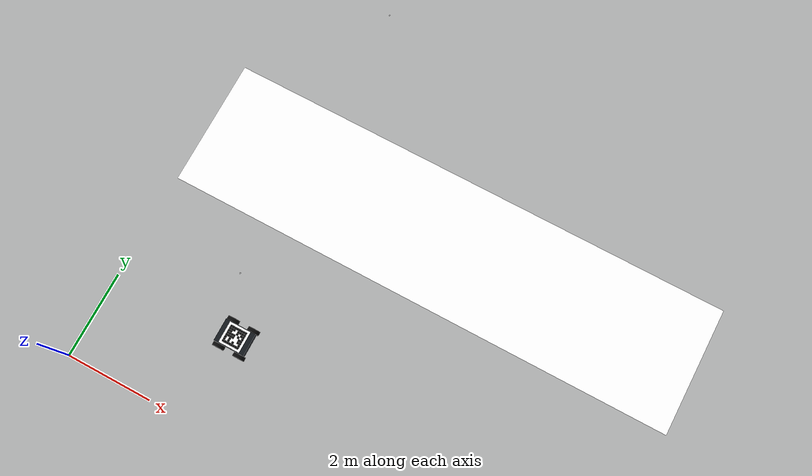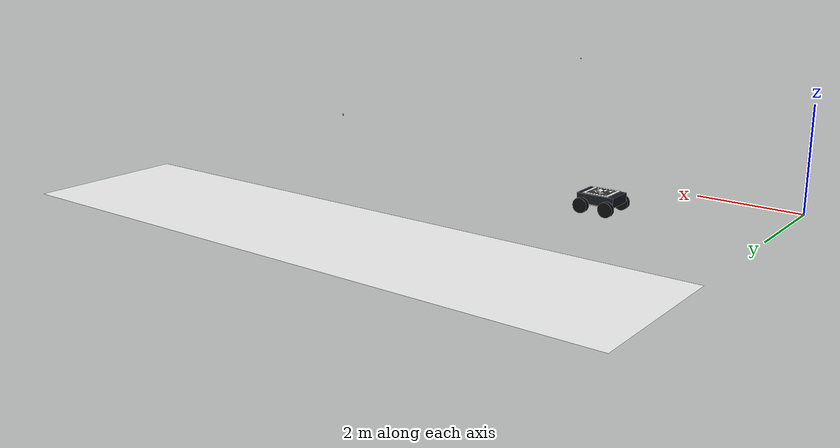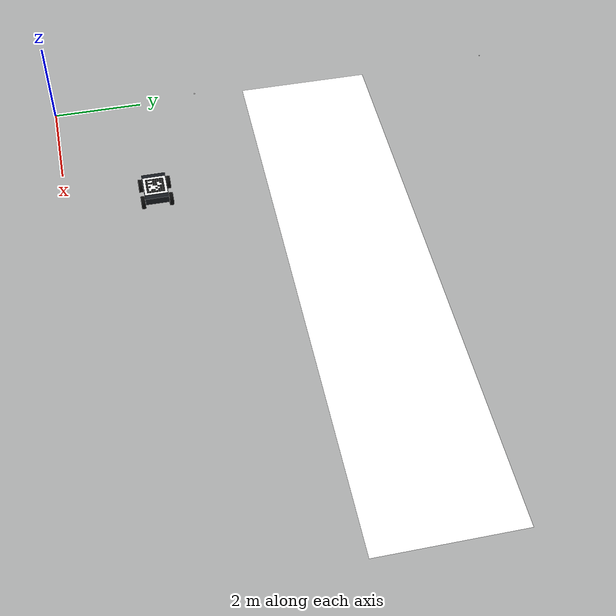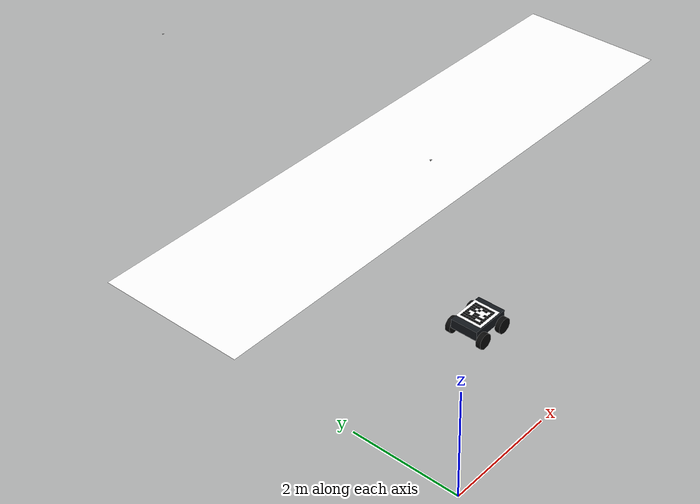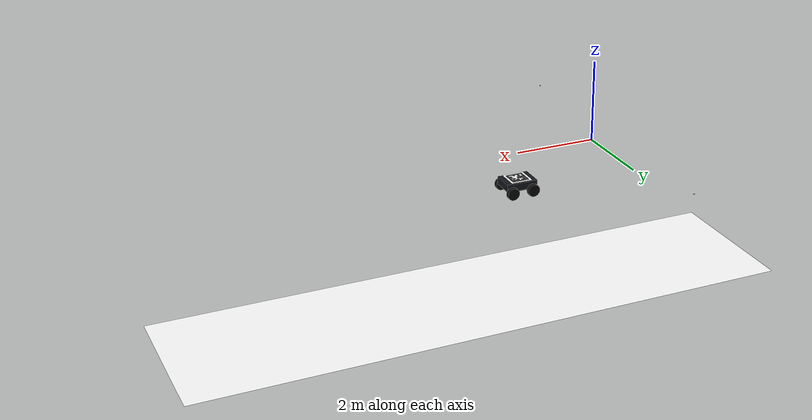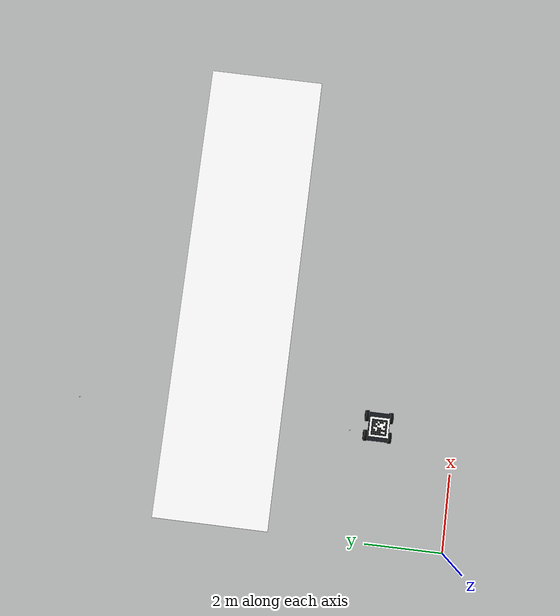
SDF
<sdf version="1.9">
 <world name="mocap_arena">
  <model name="camera_2">
   <static>true</static>
   <pose>3 9 2.90 0 1.5707963267948966 0</pose>
   <link name="camera_link">
    <visual name="rpi_camera_visual">
     <pose>0 0 0 0 0 -1.5707963267948966</pose>
     <geometry>
      <mesh><uri>file:///home/popka/Drone/mocap-rover/models/rpi_camera/meshes/rpi_camera.obj</uri></mesh>
     </geometry>
    </visual>
    <sensor name="camera_2" type="wideanglecamera">
     <pose>0.02 0 0 0 0 0</pose>
     <always_on>true</always_on>
     <update_rate>15</update_rate>
     <topic>/cameras/camera_2/image</topic>
     <visualize>true</visualize>
     <camera>
      <horizontal_fov>2.232714</horizontal_fov>
      <camera_info_topic>/cameras/camera_2/camera_info</camera_info_topic>
      <image><width>1640</width><height>1232</height><format>R8G8B8</format></image>
      <clip><near>0.03</near><far>20</far></clip>
      <lens>
       <type>equidistant</type>
       <scale_to_hfov>true</scale_to_hfov>
       <cutoff_angle>1.4163</cutoff_angle>
       <env_texture_size>2048</env_texture_size>
      </lens>
     </camera>
    </sensor>
   </link>
  </model>
  <model name="camera_3">
   <static>true</static>
   <pose>3 3 2.90 0 1.5707963267948966 0</pose>
   <link name="camera_link">
    <visual name="rpi_camera_visual">
     <pose>0 0 0 0 0 -1.5707963267948966</pose>
     <geometry>
      <mesh><uri>file:///home/popka/Drone/mocap-rover/models/rpi_camera/meshes/rpi_camera.obj</uri></mesh>
     </geometry>
    </visual>
    <sensor name="camera_3" type="wideanglecamera">
     <pose>0.02 0 0 0 0 0</pose>
     <always_on>true</always_on>
     <update_rate>15</update_rate>
     <topic>/cameras/camera_3/image</topic>
     <visualize>true</visualize>
     <camera>
      <horizontal_fov>2.232714</horizontal_fov>
      <camera_info_topic>/cameras/camera_3/camera_info</camera_info_topic>
      <image><width>1640</width><height>1232</height><format>R8G8B8</format></image>
      <clip><near>0.03</near><far>20</far></clip>
      <lens>
       <type>equidistant</type>
       <scale_to_hfov>true</scale_to_hfov>
       <cutoff_angle>1.4163</cutoff_angle>
       <env_texture_size>2048</env_texture_size>
      </lens>
     </camera>
    </sensor>
   </link>
  </model>
  <model name="tag_rover">
   <pose>3 2 0.14 0 0 0</pose>
   <link name="base_link">
    <inertial>
     <mass>8</mass>
     <inertia><ixx>0.22</ixx><iyy>0.22</iyy><izz>0.22</izz><ixy>0</ixy><ixz>0</ixz><iyz>0</iyz></inertia>
    </inertial>
    <collision name="body_collision">
     <pose>0 0 0.12 0 0 0</pose>
     <geometry><box><size>0.72 0.52 0.18</size></box></geometry>
    </collision>
    <visual name="body_visual">
     <pose>0 0 0.12 0 0 0</pose>
     <geometry><box><size>0.72 0.52 0.18</size></box></geometry>
     <material>
      <ambient>0.075 0.09 0.11 1</ambient>
      <diffuse>0.075 0.09 0.11 1</diffuse>
      <pbr><metal><metalness>0.2</metalness><roughness>0.7</roughness></metal></pbr>
     </material>
    </visual>
    <collision name="tag_board_collision">
     <pose>0 0 0.22 0 0 0</pose>
     <geometry><box><size>0.5 0.5 0.01</size></box></geometry>
    </collision>
    <visual name="tag_board_visual">
     <pose>0 0 0.22 0 0 0</pose>
     <geometry><box><size>0.5 0.5 0.01</size></box></geometry>
     <material>
      <ambient>1 1 1 1</ambient>
      <diffuse>1 1 1 1</diffuse>
      <pbr><metal><metalness>0.0</metalness><roughness>0.75</roughness></metal></pbr>
     </material>
    </visual>
    <collision name="bottom_tag_board_collision">
     <pose>0 0 0.02 0 0 0</pose>
     <geometry><box><size>0.5 0.5 0.01</size></box></geometry>
    </collision>
    <visual name="bottom_tag_board_visual">
     <pose>0 0 0.02 0 0 0</pose>
     <geometry><box><size>0.5 0.5 0.01</size></box></geometry>
     <material>
      <ambient>1 1 1 1</ambient>
      <diffuse>1 1 1 1</diffuse>
      <pbr><metal><metalness>0.0</metalness><roughness>0.75</roughness></metal></pbr>
     </material>
    </visual>
    <visual name="tag_0_1_1_visual">
     <pose>-0.17500000000000002 0.17500000000000002 0.2252 0 0 0</pose>
     <geometry><box><size>0.05 0.05 0.0004</size></box></geometry>
     <material>
      <ambient>0 0 0 1</ambient>
      <diffuse>0 0 0 1</diffuse>
      <pbr><metal><metalness>0.0</metalness><roughness>0.75</roughness></metal></pbr>
     </material>
    </visual>
    <visual name="tag_0_1_2_visual">
     <pose>-0.125 0.17500000000000002 0.2252 0 0 0</pose>
     <geometry><box><size>0.05 0.05 0.0004</size></box></geometry>
     <material>
      <ambient>0 0 0 1</ambient>
      <diffuse>0 0 0 1</diffuse>
      <pbr><metal><metalness>0.0</metalness><roughness>0.75</roughness></metal></pbr>
     </material>
    </visual>
    <visual name="tag_0_1_3_visual">
     <pose>-0.07500000000000001 0.17500000000000002 0.2252 0 0 0</pose>
     <geometry><box><size>0.05 0.05 0.0004</size></box></geometry>
     <material>
      <ambient>0 0 0 1</ambient>
      <diffuse>0 0 0 1</diffuse>
      <pbr><metal><metalness>0.0</metalness><roughness>0.75</roughness></metal></pbr>
     </material>
    </visual>
    <visual name="tag_0_1_4_visual">
     <pose>-0.025 0.17500000000000002 0.2252 0 0 0</pose>
     <geometry><box><size>0.05 0.05 0.0004</size></box></geometry>
     <material>
      <ambient>0 0 0 1</ambient>
      <diffuse>0 0 0 1</diffuse>
      <pbr><metal><metalness>0.0</metalness><roughness>0.75</roughness></metal></pbr>
     </material>
    </visual>
    <visual name="tag_0_1_5_visual">
     <pose>0.025 0.17500000000000002 0.2252 0 0 0</pose>
     <geometry><box><size>0.05 0.05 0.0004</size></box></geometry>
     <material>
      <ambient>0 0 0 1</ambient>
      <diffuse>0 0 0 1</diffuse>
      <pbr><metal><metalness>0.0</metalness><roughness>0.75</roughness></metal></pbr>
     </material>
    </visual>
    <visual name="tag_0_1_6_visual">
     <pose>0.07500000000000001 0.17500000000000002 0.2252 0 0 0</pose>
     <geometry><box><size>0.05 0.05 0.0004</size></box></geometry>
     <material>
      <ambient>0 0 0 1</ambient>
      <diffuse>0 0 0 1</diffuse>
      <pbr><metal><metalness>0.0</metalness><roughness>0.75</roughness></metal></pbr>
     </material>
    </visual>
    <visual name="tag_0_1_7_visual">
     <pose>0.125 0.17500000000000002 0.2252 0 0 0</pose>
     <geometry><box><size>0.05 0.05 0.0004</size></box></geometry>
     <material>
      <ambient>0 0 0 1</ambient>
      <diffuse>0 0 0 1</diffuse>
      <pbr><metal><metalness>0.0</metalness><roughness>0.75</roughness></metal></pbr>
     </material>
    </visual>
    <visual name="tag_0_1_8_visual">
     <pose>0.17500000000000002 0.17500000000000002 0.2252 0 0 0</pose>
     <geometry><box><size>0.05 0.05 0.0004</size></box></geometry>
     <material>
      <ambient>0 0 0 1</ambient>
      <diffuse>0 0 0 1</diffuse>
      <pbr><metal><metalness>0.0</metalness><roughness>0.75</roughness></metal></pbr>
     </material>
    </visual>
    <visual name="tag_0_2_1_visual">
     <pose>-0.17500000000000002 0.125 0.2252 0 0 0</pose>
     <geometry><box><size>0.05 0.05 0.0004</size></box></geometry>
     <material>
      <ambient>0 0 0 1</ambient>
      <diffuse>0 0 0 1</diffuse>
      <pbr><metal><metalness>0.0</metalness><roughness>0.75</roughness></metal></pbr>
     </material>
    </visual>
    <visual name="tag_0_2_2_visual">
     <pose>-0.125 0.125 0.2252 0 0 0</pose>
     <geometry><box><size>0.05 0.05 0.0004</size></box></geometry>
     <material>
      <ambient>0 0 0 1</ambient>
      <diffuse>0 0 0 1</diffuse>
      <pbr><metal><metalness>0.0</metalness><roughness>0.75</roughness></metal></pbr>
     </material>
    </visual>
    <visual name="tag_0_2_3_visual">
     <pose>-0.07500000000000001 0.125 0.2252 0 0 0</pose>
     <geometry><box><size>0.05 0.05 0.0004</size></box></geometry>
     <material>
      <ambient>0 0 0 1</ambient>
      <diffuse>0 0 0 1</diffuse>
      <pbr><metal><metalness>0.0</metalness><roughness>0.75</roughness></metal></pbr>
     </material>
    </visual>
    <visual name="tag_0_2_5_visual">
     <pose>0.025 0.125 0.2252 0 0 0</pose>
     <geometry><box><size>0.05 0.05 0.0004</size></box></geometry>
     <material>
      <ambient>0 0 0 1</ambient>
      <diffuse>0 0 0 1</diffuse>
      <pbr><metal><metalness>0.0</metalness><roughness>0.75</roughness></metal></pbr>
     </material>
    </visual>
    <visual name="tag_0_2_6_visual">
     <pose>0.07500000000000001 0.125 0.2252 0 0 0</pose>
     <geometry><box><size>0.05 0.05 0.0004</size></box></geometry>
     <material>
      <ambient>0 0 0 1</ambient>
      <diffuse>0 0 0 1</diffuse>
      <pbr><metal><metalness>0.0</metalness><roughness>0.75</roughness></metal></pbr>
     </material>
    </visual>
    <visual name="tag_0_2_7_visual">
     <pose>0.125 0.125 0.2252 0 0 0</pose>
     <geometry><box><size>0.05 0.05 0.0004</size></box></geometry>
     <material>
      <ambient>0 0 0 1</ambient>
      <diffuse>0 0 0 1</diffuse>
      <pbr><metal><metalness>0.0</metalness><roughness>0.75</roughness></metal></pbr>
     </material>
    </visual>
    <visual name="tag_0_2_8_visual">
     <pose>0.17500000000000002 0.125 0.2252 0 0 0</pose>
     <geometry><box><size>0.05 0.05 0.0004</size></box></geometry>
     <material>
      <ambient>0 0 0 1</ambient>
      <diffuse>0 0 0 1</diffuse>
      <pbr><metal><metalness>0.0</metalness><roughness>0.75</roughness></metal></pbr>
     </material>
    </visual>
    <visual name="tag_0_3_1_visual">
     <pose>-0.17500000000000002 0.07500000000000001 0.2252 0 0 0</pose>
     <geometry><box><size>0.05 0.05 0.0004</size></box></geometry>
     <material>
      <ambient>0 0 0 1</ambient>
      <diffuse>0 0 0 1</diffuse>
      <pbr><metal><metalness>0.0</metalness><roughness>0.75</roughness></metal></pbr>
     </material>
    </visual>
    <visual name="tag_0_3_2_visual">
     <pose>-0.125 0.07500000000000001 0.2252 0 0 0</pose>
     <geometry><box><size>0.05 0.05 0.0004</size></box></geometry>
     <material>
      <ambient>0 0 0 1</ambient>
      <diffuse>0 0 0 1</diffuse>
      <pbr><metal><metalness>0.0</metalness><roughness>0.75</roughness></metal></pbr>
     </material>
    </visual>
    <visual name="tag_0_3_5_visual">
     <pose>0.025 0.07500000000000001 0.2252 0 0 0</pose>
     <geometry><box><size>0.05 0.05 0.0004</size></box></geometry>
     <material>
      <ambient>0 0 0 1</ambient>
      <diffuse>0 0 0 1</diffuse>
      <pbr><metal><metalness>0.0</metalness><roughness>0.75</roughness></metal></pbr>
     </material>
    </visual>
    <visual name="tag_0_3_7_visual">
     <pose>0.125 0.07500000000000001 0.2252 0 0 0</pose>
     <geometry><box><size>0.05 0.05 0.0004</size></box></geometry>
     <material>
      <ambient>0 0 0 1</ambient>
      <diffuse>0 0 0 1</diffuse>
      <pbr><metal><metalness>0.0</metalness><roughness>0.75</roughness></metal></pbr>
     </material>
    </visual>
    <visual name="tag_0_3_8_visual">
     <pose>0.17500000000000002 0.07500000000000001 0.2252 0 0 0</pose>
     <geometry><box><size>0.05 0.05 0.0004</size></box></geometry>
     <material>
      <ambient>0 0 0 1</ambient>
      <diffuse>0 0 0 1</diffuse>
      <pbr><metal><metalness>0.0</metalness><roughness>0.75</roughness></metal></pbr>
     </material>
    </visual>
    <visual name="tag_0_4_1_visual">
     <pose>-0.17500000000000002 0.025 0.2252 0 0 0</pose>
     <geometry><box><size>0.05 0.05 0.0004</size></box></geometry>
     <material>
      <ambient>0 0 0 1</ambient>
      <diffuse>0 0 0 1</diffuse>
      <pbr><metal><metalness>0.0</metalness><roughness>0.75</roughness></metal></pbr>
     </material>
    </visual>
    <visual name="tag_0_4_2_visual">
     <pose>-0.125 0.025 0.2252 0 0 0</pose>
     <geometry><box><size>0.05 0.05 0.0004</size></box></geometry>
     <material>
      <ambient>0 0 0 1</ambient>
      <diffuse>0 0 0 1</diffuse>
      <pbr><metal><metalness>0.0</metalness><roughness>0.75</roughness></metal></pbr>
     </material>
    </visual>
    <visual name="tag_0_4_3_visual">
     <pose>-0.07500000000000001 0.025 0.2252 0 0 0</pose>
     <geometry><box><size>0.05 0.05 0.0004</size></box></geometry>
     <material>
      <ambient>0 0 0 1</ambient>
      <diffuse>0 0 0 1</diffuse>
      <pbr><metal><metalness>0.0</metalness><roughness>0.75</roughness></metal></pbr>
     </material>
    </visual>
    <visual name="tag_0_4_4_visual">
     <pose>-0.025 0.025 0.2252 0 0 0</pose>
     <geometry><box><size>0.05 0.05 0.0004</size></box></geometry>
     <material>
      <ambient>0 0 0 1</ambient>
      <diffuse>0 0 0 1</diffuse>
      <pbr><metal><metalness>0.0</metalness><roughness>0.75</roughness></metal></pbr>
     </material>
    </visual>
    <visual name="tag_0_4_6_visual">
     <pose>0.07500000000000001 0.025 0.2252 0 0 0</pose>
     <geometry><box><size>0.05 0.05 0.0004</size></box></geometry>
     <material>
      <ambient>0 0 0 1</ambient>
      <diffuse>0 0 0 1</diffuse>
      <pbr><metal><metalness>0.0</metalness><roughness>0.75</roughness></metal></pbr>
     </material>
    </visual>
    <visual name="tag_0_4_8_visual">
     <pose>0.17500000000000002 0.025 0.2252 0 0 0</pose>
     <geometry><box><size>0.05 0.05 0.0004</size></box></geometry>
     <material>
      <ambient>0 0 0 1</ambient>
      <diffuse>0 0 0 1</diffuse>
      <pbr><metal><metalness>0.0</metalness><roughness>0.75</roughness></metal></pbr>
     </material>
    </visual>
    <visual name="tag_0_5_1_visual">
     <pose>-0.17500000000000002 -0.025 0.2252 0 0 0</pose>
     <geometry><box><size>0.05 0.05 0.0004</size></box></geometry>
     <material>
      <ambient>0 0 0 1</ambient>
      <diffuse>0 0 0 1</diffuse>
      <pbr><metal><metalness>0.0</metalness><roughness>0.75</roughness></metal></pbr>
     </material>
    </visual>
    <visual name="tag_0_5_2_visual">
     <pose>-0.125 -0.025 0.2252 0 0 0</pose>
     <geometry><box><size>0.05 0.05 0.0004</size></box></geometry>
     <material>
      <ambient>0 0 0 1</ambient>
      <diffuse>0 0 0 1</diffuse>
      <pbr><metal><metalness>0.0</metalness><roughness>0.75</roughness></metal></pbr>
     </material>
    </visual>
    <visual name="tag_0_5_3_visual">
     <pose>-0.07500000000000001 -0.025 0.2252 0 0 0</pose>
     <geometry><box><size>0.05 0.05 0.0004</size></box></geometry>
     <material>
      <ambient>0 0 0 1</ambient>
      <diffuse>0 0 0 1</diffuse>
      <pbr><metal><metalness>0.0</metalness><roughness>0.75</roughness></metal></pbr>
     </material>
    </visual>
    <visual name="tag_0_5_4_visual">
     <pose>-0.025 -0.025 0.2252 0 0 0</pose>
     <geometry><box><size>0.05 0.05 0.0004</size></box></geometry>
     <material>
      <ambient>0 0 0 1</ambient>
      <diffuse>0 0 0 1</diffuse>
      <pbr><metal><metalness>0.0</metalness><roughness>0.75</roughness></metal></pbr>
     </material>
    </visual>
    <visual name="tag_0_5_7_visual">
     <pose>0.125 -0.025 0.2252 0 0 0</pose>
     <geometry><box><size>0.05 0.05 0.0004</size></box></geometry>
     <material>
      <ambient>0 0 0 1</ambient>
      <diffuse>0 0 0 1</diffuse>
      <pbr><metal><metalness>0.0</metalness><roughness>0.75</roughness></metal></pbr>
     </material>
    </visual>
    <visual name="tag_0_5_8_visual">
     <pose>0.17500000000000002 -0.025 0.2252 0 0 0</pose>
     <geometry><box><size>0.05 0.05 0.0004</size></box></geometry>
     <material>
      <ambient>0 0 0 1</ambient>
      <diffuse>0 0 0 1</diffuse>
      <pbr><metal><metalness>0.0</metalness><roughness>0.75</roughness></metal></pbr>
     </material>
    </visual>
    <visual name="tag_0_6_1_visual">
     <pose>-0.17500000000000002 -0.07500000000000001 0.2252 0 0 0</pose>
     <geometry><box><size>0.05 0.05 0.0004</size></box></geometry>
     <material>
      <ambient>0 0 0 1</ambient>
      <diffuse>0 0 0 1</diffuse>
      <pbr><metal><metalness>0.0</metalness><roughness>0.75</roughness></metal></pbr>
     </material>
    </visual>
    <visual name="tag_0_6_3_visual">
     <pose>-0.07500000000000001 -0.07500000000000001 0.2252 0 0 0</pose>
     <geometry><box><size>0.05 0.05 0.0004</size></box></geometry>
     <material>
      <ambient>0 0 0 1</ambient>
      <diffuse>0 0 0 1</diffuse>
      <pbr><metal><metalness>0.0</metalness><roughness>0.75</roughness></metal></pbr>
     </material>
    </visual>
    <visual name="tag_0_6_7_visual">
     <pose>0.125 -0.07500000000000001 0.2252 0 0 0</pose>
     <geometry><box><size>0.05 0.05 0.0004</size></box></geometry>
     <material>
      <ambient>0 0 0 1</ambient>
      <diffuse>0 0 0 1</diffuse>
      <pbr><metal><metalness>0.0</metalness><roughness>0.75</roughness></metal></pbr>
     </material>
    </visual>
    <visual name="tag_0_6_8_visual">
     <pose>0.17500000000000002 -0.07500000000000001 0.2252 0 0 0</pose>
     <geometry><box><size>0.05 0.05 0.0004</size></box></geometry>
     <material>
      <ambient>0 0 0 1</ambient>
      <diffuse>0 0 0 1</diffuse>
      <pbr><metal><metalness>0.0</metalness><roughness>0.75</roughness></metal></pbr>
     </material>
    </visual>
    <visual name="tag_0_7_1_visual">
     <pose>-0.17500000000000002 -0.125 0.2252 0 0 0</pose>
     <geometry><box><size>0.05 0.05 0.0004</size></box></geometry>
     <material>
      <ambient>0 0 0 1</ambient>
      <diffuse>0 0 0 1</diffuse>
      <pbr><metal><metalness>0.0</metalness><roughness>0.75</roughness></metal></pbr>
     </material>
    </visual>
    <visual name="tag_0_7_3_visual">
     <pose>-0.07500000000000001 -0.125 0.2252 0 0 0</pose>
     <geometry><box><size>0.05 0.05 0.0004</size></box></geometry>
     <material>
      <ambient>0 0 0 1</ambient>
      <diffuse>0 0 0 1</diffuse>
      <pbr><metal><metalness>0.0</metalness><roughness>0.75</roughness></metal></pbr>
     </material>
    </visual>
    <visual name="tag_0_7_5_visual">
     <pose>0.025 -0.125 0.2252 0 0 0</pose>
     <geometry><box><size>0.05 0.05 0.0004</size></box></geometry>
     <material>
      <ambient>0 0 0 1</ambient>
      <diffuse>0 0 0 1</diffuse>
      <pbr><metal><metalness>0.0</metalness><roughness>0.75</roughness></metal></pbr>
     </material>
    </visual>
    <visual name="tag_0_7_8_visual">
     <pose>0.17500000000000002 -0.125 0.2252 0 0 0</pose>
     <geometry><box><size>0.05 0.05 0.0004</size></box></geometry>
     <material>
      <ambient>0 0 0 1</ambient>
      <diffuse>0 0 0 1</diffuse>
      <pbr><metal><metalness>0.0</metalness><roughness>0.75</roughness></metal></pbr>
     </material>
    </visual>
    <visual name="tag_0_8_1_visual">
     <pose>-0.17500000000000002 -0.17500000000000002 0.2252 0 0 0</pose>
     <geometry><box><size>0.05 0.05 0.0004</size></box></geometry>
     <material>
      <ambient>0 0 0 1</ambient>
      <diffuse>0 0 0 1</diffuse>
      <pbr><metal><metalness>0.0</metalness><roughness>0.75</roughness></metal></pbr>
     </material>
    </visual>
    <visual name="tag_0_8_2_visual">
     <pose>-0.125 -0.17500000000000002 0.2252 0 0 0</pose>
     <geometry><box><size>0.05 0.05 0.0004</size></box></geometry>
     <material>
      <ambient>0 0 0 1</ambient>
      <diffuse>0 0 0 1</diffuse>
      <pbr><metal><metalness>0.0</metalness><roughness>0.75</roughness></metal></pbr>
     </material>
    </visual>
    <visual name="tag_0_8_3_visual">
     <pose>-0.07500000000000001 -0.17500000000000002 0.2252 0 0 0</pose>
     <geometry><box><size>0.05 0.05 0.0004</size></box></geometry>
     <material>
      <ambient>0 0 0 1</ambient>
      <diffuse>0 0 0 1</diffuse>
      <pbr><metal><metalness>0.0</metalness><roughness>0.75</roughness></metal></pbr>
     </material>
    </visual>
    <visual name="tag_0_8_4_visual">
     <pose>-0.025 -0.17500000000000002 0.2252 0 0 0</pose>
     <geometry><box><size>0.05 0.05 0.0004</size></box></geometry>
     <material>
      <ambient>0 0 0 1</ambient>
      <diffuse>0 0 0 1</diffuse>
      <pbr><metal><metalness>0.0</metalness><roughness>0.75</roughness></metal></pbr>
     </material>
    </visual>
    <visual name="tag_0_8_5_visual">
     <pose>0.025 -0.17500000000000002 0.2252 0 0 0</pose>
     <geometry><box><size>0.05 0.05 0.0004</size></box></geometry>
     <material>
      <ambient>0 0 0 1</ambient>
      <diffuse>0 0 0 1</diffuse>
      <pbr><metal><metalness>0.0</metalness><roughness>0.75</roughness></metal></pbr>
     </material>
    </visual>
    <visual name="tag_0_8_6_visual">
     <pose>0.07500000000000001 -0.17500000000000002 0.2252 0 0 0</pose>
     <geometry><box><size>0.05 0.05 0.0004</size></box></geometry>
     <material>
      <ambient>0 0 0 1</ambient>
      <diffuse>0 0 0 1</diffuse>
      <pbr><metal><metalness>0.0</metalness><roughness>0.75</roughness></metal></pbr>
     </material>
    </visual>
    <visual name="tag_0_8_7_visual">
     <pose>0.125 -0.17500000000000002 0.2252 0 0 0</pose>
     <geometry><box><size>0.05 0.05 0.0004</size></box></geometry>
     <material>
      <ambient>0 0 0 1</ambient>
      <diffuse>0 0 0 1</diffuse>
      <pbr><metal><metalness>0.0</metalness><roughness>0.75</roughness></metal></pbr>
     </material>
    </visual>
    <visual name="tag_0_8_8_visual">
     <pose>0.17500000000000002 -0.17500000000000002 0.2252 0 0 0</pose>
     <geometry><box><size>0.05 0.05 0.0004</size></box></geometry>
     <material>
      <ambient>0 0 0 1</ambient>
      <diffuse>0 0 0 1</diffuse>
      <pbr><metal><metalness>0.0</metalness><roughness>0.75</roughness></metal></pbr>
     </material>
    </visual>
    <visual name="tag_1_1_1_visual">
     <pose>-0.17500000000000002 -0.17500000000000002 0.0148 0 0 0</pose>
     <geometry><box><size>0.05 0.05 0.0004</size></box></geometry>
     <material>
      <ambient>0 0 0 1</ambient>
      <diffuse>0 0 0 1</diffuse>
      <pbr><metal><metalness>0.0</metalness><roughness>0.75</roughness></metal></pbr>
     </material>
    </visual>
    <visual name="tag_1_1_2_visual">
     <pose>-0.125 -0.17500000000000002 0.0148 0 0 0</pose>
     <geometry><box><size>0.05 0.05 0.0004</size></box></geometry>
     <material>
      <ambient>0 0 0 1</ambient>
      <diffuse>0 0 0 1</diffuse>
      <pbr><metal><metalness>0.0</metalness><roughness>0.75</roughness></metal></pbr>
     </material>
    </visual>
    <visual name="tag_1_1_3_visual">
     <pose>-0.07500000000000001 -0.17500000000000002 0.0148 0 0 0</pose>
     <geometry><box><size>0.05 0.05 0.0004</size></box></geometry>
     <material>
      <ambient>0 0 0 1</ambient>
      <diffuse>0 0 0 1</diffuse>
      <pbr><metal><metalness>0.0</metalness><roughness>0.75</roughness></metal></pbr>
     </material>
    </visual>
    <visual name="tag_1_1_4_visual">
     <pose>-0.025 -0.17500000000000002 0.0148 0 0 0</pose>
     <geometry><box><size>0.05 0.05 0.0004</size></box></geometry>
     <material>
      <ambient>0 0 0 1</ambient>
      <diffuse>0 0 0 1</diffuse>
      <pbr><metal><metalness>0.0</metalness><roughness>0.75</roughness></metal></pbr>
     </material>
    </visual>
    <visual name="tag_1_1_5_visual">
     <pose>0.025 -0.17500000000000002 0.0148 0 0 0</pose>
     <geometry><box><size>0.05 0.05 0.0004</size></box></geometry>
     <material>
      <ambient>0 0 0 1</ambient>
      <diffuse>0 0 0 1</diffuse>
      <pbr><metal><metalness>0.0</metalness><roughness>0.75</roughness></metal></pbr>
     </material>
    </visual>
    <visual name="tag_1_1_6_visual">
     <pose>0.07500000000000001 -0.17500000000000002 0.0148 0 0 0</pose>
     <geometry><box><size>0.05 0.05 0.0004</size></box></geometry>
     <material>
      <ambient>0 0 0 1</ambient>
      <diffuse>0 0 0 1</diffuse>
      <pbr><metal><metalness>0.0</metalness><roughness>0.75</roughness></metal></pbr>
     </material>
    </visual>
    <visual name="tag_1_1_7_visual">
     <pose>0.125 -0.17500000000000002 0.0148 0 0 0</pose>
     <geometry><box><size>0.05 0.05 0.0004</size></box></geometry>
     <material>
      <ambient>0 0 0 1</ambient>
      <diffuse>0 0 0 1</diffuse>
      <pbr><metal><metalness>0.0</metalness><roughness>0.75</roughness></metal></pbr>
     </material>
    </visual>
    <visual name="tag_1_1_8_visual">
     <pose>0.17500000000000002 -0.17500000000000002 0.0148 0 0 0</pose>
     <geometry><box><size>0.05 0.05 0.0004</size></box></geometry>
     <material>
      <ambient>0 0 0 1</ambient>
      <diffuse>0 0 0 1</diffuse>
      <pbr><metal><metalness>0.0</metalness><roughness>0.75</roughness></metal></pbr>
     </material>
    </visual>
    <visual name="tag_1_2_1_visual">
     <pose>-0.17500000000000002 -0.125 0.0148 0 0 0</pose>
     <geometry><box><size>0.05 0.05 0.0004</size></box></geometry>
     <material>
      <ambient>0 0 0 1</ambient>
      <diffuse>0 0 0 1</diffuse>
      <pbr><metal><metalness>0.0</metalness><roughness>0.75</roughness></metal></pbr>
     </material>
    </visual>
    <visual name="tag_1_2_3_visual">
     <pose>-0.07500000000000001 -0.125 0.0148 0 0 0</pose>
     <geometry><box><size>0.05 0.05 0.0004</size></box></geometry>
     <material>
      <ambient>0 0 0 1</ambient>
      <diffuse>0 0 0 1</diffuse>
      <pbr><metal><metalness>0.0</metalness><roughness>0.75</roughness></metal></pbr>
     </material>
    </visual>
    <visual name="tag_1_2_4_visual">
     <pose>-0.025 -0.125 0.0148 0 0 0</pose>
     <geometry><box><size>0.05 0.05 0.0004</size></box></geometry>
     <material>
      <ambient>0 0 0 1</ambient>
      <diffuse>0 0 0 1</diffuse>
      <pbr><metal><metalness>0.0</metalness><roughness>0.75</roughness></metal></pbr>
     </material>
    </visual>
    <visual name="tag_1_2_6_visual">
     <pose>0.07500000000000001 -0.125 0.0148 0 0 0</pose>
     <geometry><box><size>0.05 0.05 0.0004</size></box></geometry>
     <material>
      <ambient>0 0 0 1</ambient>
      <diffuse>0 0 0 1</diffuse>
      <pbr><metal><metalness>0.0</metalness><roughness>0.75</roughness></metal></pbr>
     </material>
    </visual>
    <visual name="tag_1_2_7_visual">
     <pose>0.125 -0.125 0.0148 0 0 0</pose>
     <geometry><box><size>0.05 0.05 0.0004</size></box></geometry>
     <material>
      <ambient>0 0 0 1</ambient>
      <diffuse>0 0 0 1</diffuse>
      <pbr><metal><metalness>0.0</metalness><roughness>0.75</roughness></metal></pbr>
     </material>
    </visual>
    <visual name="tag_1_2_8_visual">
     <pose>0.17500000000000002 -0.125 0.0148 0 0 0</pose>
     <geometry><box><size>0.05 0.05 0.0004</size></box></geometry>
     <material>
      <ambient>0 0 0 1</ambient>
      <diffuse>0 0 0 1</diffuse>
      <pbr><metal><metalness>0.0</metalness><roughness>0.75</roughness></metal></pbr>
     </material>
    </visual>
    <visual name="tag_1_3_1_visual">
     <pose>-0.17500000000000002 -0.07500000000000001 0.0148 0 0 0</pose>
     <geometry><box><size>0.05 0.05 0.0004</size></box></geometry>
     <material>
      <ambient>0 0 0 1</ambient>
      <diffuse>0 0 0 1</diffuse>
      <pbr><metal><metalness>0.0</metalness><roughness>0.75</roughness></metal></pbr>
     </material>
    </visual>
    <visual name="tag_1_3_3_visual">
     <pose>-0.07500000000000001 -0.07500000000000001 0.0148 0 0 0</pose>
     <geometry><box><size>0.05 0.05 0.0004</size></box></geometry>
     <material>
      <ambient>0 0 0 1</ambient>
      <diffuse>0 0 0 1</diffuse>
      <pbr><metal><metalness>0.0</metalness><roughness>0.75</roughness></metal></pbr>
     </material>
    </visual>
    <visual name="tag_1_3_6_visual">
     <pose>0.07500000000000001 -0.07500000000000001 0.0148 0 0 0</pose>
     <geometry><box><size>0.05 0.05 0.0004</size></box></geometry>
     <material>
      <ambient>0 0 0 1</ambient>
      <diffuse>0 0 0 1</diffuse>
      <pbr><metal><metalness>0.0</metalness><roughness>0.75</roughness></metal></pbr>
     </material>
    </visual>
    <visual name="tag_1_3_8_visual">
     <pose>0.17500000000000002 -0.07500000000000001 0.0148 0 0 0</pose>
     <geometry><box><size>0.05 0.05 0.0004</size></box></geometry>
     <material>
      <ambient>0 0 0 1</ambient>
      <diffuse>0 0 0 1</diffuse>
      <pbr><metal><metalness>0.0</metalness><roughness>0.75</roughness></metal></pbr>
     </material>
    </visual>
    <visual name="tag_1_4_1_visual">
     <pose>-0.17500000000000002 -0.025 0.0148 0 0 0</pose>
     <geometry><box><size>0.05 0.05 0.0004</size></box></geometry>
     <material>
      <ambient>0 0 0 1</ambient>
      <diffuse>0 0 0 1</diffuse>
      <pbr><metal><metalness>0.0</metalness><roughness>0.75</roughness></metal></pbr>
     </material>
    </visual>
    <visual name="tag_1_4_2_visual">
     <pose>-0.125 -0.025 0.0148 0 0 0</pose>
     <geometry><box><size>0.05 0.05 0.0004</size></box></geometry>
     <material>
      <ambient>0 0 0 1</ambient>
      <diffuse>0 0 0 1</diffuse>
      <pbr><metal><metalness>0.0</metalness><roughness>0.75</roughness></metal></pbr>
     </material>
    </visual>
    <visual name="tag_1_4_3_visual">
     <pose>-0.07500000000000001 -0.025 0.0148 0 0 0</pose>
     <geometry><box><size>0.05 0.05 0.0004</size></box></geometry>
     <material>
      <ambient>0 0 0 1</ambient>
      <diffuse>0 0 0 1</diffuse>
      <pbr><metal><metalness>0.0</metalness><roughness>0.75</roughness></metal></pbr>
     </material>
    </visual>
    <visual name="tag_1_4_4_visual">
     <pose>-0.025 -0.025 0.0148 0 0 0</pose>
     <geometry><box><size>0.05 0.05 0.0004</size></box></geometry>
     <material>
      <ambient>0 0 0 1</ambient>
      <diffuse>0 0 0 1</diffuse>
      <pbr><metal><metalness>0.0</metalness><roughness>0.75</roughness></metal></pbr>
     </material>
    </visual>
    <visual name="tag_1_4_7_visual">
     <pose>0.125 -0.025 0.0148 0 0 0</pose>
     <geometry><box><size>0.05 0.05 0.0004</size></box></geometry>
     <material>
      <ambient>0 0 0 1</ambient>
      <diffuse>0 0 0 1</diffuse>
      <pbr><metal><metalness>0.0</metalness><roughness>0.75</roughness></metal></pbr>
     </material>
    </visual>
    <visual name="tag_1_4_8_visual">
     <pose>0.17500000000000002 -0.025 0.0148 0 0 0</pose>
     <geometry><box><size>0.05 0.05 0.0004</size></box></geometry>
     <material>
      <ambient>0 0 0 1</ambient>
      <diffuse>0 0 0 1</diffuse>
      <pbr><metal><metalness>0.0</metalness><roughness>0.75</roughness></metal></pbr>
     </material>
    </visual>
    <visual name="tag_1_5_1_visual">
     <pose>-0.17500000000000002 0.025 0.0148 0 0 0</pose>
     <geometry><box><size>0.05 0.05 0.0004</size></box></geometry>
     <material>
      <ambient>0 0 0 1</ambient>
      <diffuse>0 0 0 1</diffuse>
      <pbr><metal><metalness>0.0</metalness><roughness>0.75</roughness></metal></pbr>
     </material>
    </visual>
    <visual name="tag_1_5_2_visual">
     <pose>-0.125 0.025 0.0148 0 0 0</pose>
     <geometry><box><size>0.05 0.05 0.0004</size></box></geometry>
     <material>
      <ambient>0 0 0 1</ambient>
      <diffuse>0 0 0 1</diffuse>
      <pbr><metal><metalness>0.0</metalness><roughness>0.75</roughness></metal></pbr>
     </material>
    </visual>
    <visual name="tag_1_5_3_visual">
     <pose>-0.07500000000000001 0.025 0.0148 0 0 0</pose>
     <geometry><box><size>0.05 0.05 0.0004</size></box></geometry>
     <material>
      <ambient>0 0 0 1</ambient>
      <diffuse>0 0 0 1</diffuse>
      <pbr><metal><metalness>0.0</metalness><roughness>0.75</roughness></metal></pbr>
     </material>
    </visual>
    <visual name="tag_1_5_8_visual">
     <pose>0.17500000000000002 0.025 0.0148 0 0 0</pose>
     <geometry><box><size>0.05 0.05 0.0004</size></box></geometry>
     <material>
      <ambient>0 0 0 1</ambient>
      <diffuse>0 0 0 1</diffuse>
      <pbr><metal><metalness>0.0</metalness><roughness>0.75</roughness></metal></pbr>
     </material>
    </visual>
    <visual name="tag_1_6_1_visual">
     <pose>-0.17500000000000002 0.07500000000000001 0.0148 0 0 0</pose>
     <geometry><box><size>0.05 0.05 0.0004</size></box></geometry>
     <material>
      <ambient>0 0 0 1</ambient>
      <diffuse>0 0 0 1</diffuse>
      <pbr><metal><metalness>0.0</metalness><roughness>0.75</roughness></metal></pbr>
     </material>
    </visual>
    <visual name="tag_1_6_5_visual">
     <pose>0.025 0.07500000000000001 0.0148 0 0 0</pose>
     <geometry><box><size>0.05 0.05 0.0004</size></box></geometry>
     <material>
      <ambient>0 0 0 1</ambient>
      <diffuse>0 0 0 1</diffuse>
      <pbr><metal><metalness>0.0</metalness><roughness>0.75</roughness></metal></pbr>
     </material>
    </visual>
    <visual name="tag_1_6_7_visual">
     <pose>0.125 0.07500000000000001 0.0148 0 0 0</pose>
     <geometry><box><size>0.05 0.05 0.0004</size></box></geometry>
     <material>
      <ambient>0 0 0 1</ambient>
      <diffuse>0 0 0 1</diffuse>
      <pbr><metal><metalness>0.0</metalness><roughness>0.75</roughness></metal></pbr>
     </material>
    </visual>
    <visual name="tag_1_6_8_visual">
     <pose>0.17500000000000002 0.07500000000000001 0.0148 0 0 0</pose>
     <geometry><box><size>0.05 0.05 0.0004</size></box></geometry>
     <material>
      <ambient>0 0 0 1</ambient>
      <diffuse>0 0 0 1</diffuse>
      <pbr><metal><metalness>0.0</metalness><roughness>0.75</roughness></metal></pbr>
     </material>
    </visual>
    <visual name="tag_1_7_1_visual">
     <pose>-0.17500000000000002 0.125 0.0148 0 0 0</pose>
     <geometry><box><size>0.05 0.05 0.0004</size></box></geometry>
     <material>
      <ambient>0 0 0 1</ambient>
      <diffuse>0 0 0 1</diffuse>
      <pbr><metal><metalness>0.0</metalness><roughness>0.75</roughness></metal></pbr>
     </material>
    </visual>
    <visual name="tag_1_7_2_visual">
     <pose>-0.125 0.125 0.0148 0 0 0</pose>
     <geometry><box><size>0.05 0.05 0.0004</size></box></geometry>
     <material>
      <ambient>0 0 0 1</ambient>
      <diffuse>0 0 0 1</diffuse>
      <pbr><metal><metalness>0.0</metalness><roughness>0.75</roughness></metal></pbr>
     </material>
    </visual>
    <visual name="tag_1_7_5_visual">
     <pose>0.025 0.125 0.0148 0 0 0</pose>
     <geometry><box><size>0.05 0.05 0.0004</size></box></geometry>
     <material>
      <ambient>0 0 0 1</ambient>
      <diffuse>0 0 0 1</diffuse>
      <pbr><metal><metalness>0.0</metalness><roughness>0.75</roughness></metal></pbr>
     </material>
    </visual>
    <visual name="tag_1_7_8_visual">
     <pose>0.17500000000000002 0.125 0.0148 0 0 0</pose>
     <geometry><box><size>0.05 0.05 0.0004</size></box></geometry>
     <material>
      <ambient>0 0 0 1</ambient>
      <diffuse>0 0 0 1</diffuse>
      <pbr><metal><metalness>0.0</metalness><roughness>0.75</roughness></metal></pbr>
     </material>
    </visual>
    <visual name="tag_1_8_1_visual">
     <pose>-0.17500000000000002 0.17500000000000002 0.0148 0 0 0</pose>
     <geometry><box><size>0.05 0.05 0.0004</size></box></geometry>
     <material>
      <ambient>0 0 0 1</ambient>
      <diffuse>0 0 0 1</diffuse>
      <pbr><metal><metalness>0.0</metalness><roughness>0.75</roughness></metal></pbr>
     </material>
    </visual>
    <visual name="tag_1_8_2_visual">
     <pose>-0.125 0.17500000000000002 0.0148 0 0 0</pose>
     <geometry><box><size>0.05 0.05 0.0004</size></box></geometry>
     <material>
      <ambient>0 0 0 1</ambient>
      <diffuse>0 0 0 1</diffuse>
      <pbr><metal><metalness>0.0</metalness><roughness>0.75</roughness></metal></pbr>
     </material>
    </visual>
    <visual name="tag_1_8_3_visual">
     <pose>-0.07500000000000001 0.17500000000000002 0.0148 0 0 0</pose>
     <geometry><box><size>0.05 0.05 0.0004</size></box></geometry>
     <material>
      <ambient>0 0 0 1</ambient>
      <diffuse>0 0 0 1</diffuse>
      <pbr><metal><metalness>0.0</metalness><roughness>0.75</roughness></metal></pbr>
     </material>
    </visual>
    <visual name="tag_1_8_4_visual">
     <pose>-0.025 0.17500000000000002 0.0148 0 0 0</pose>
     <geometry><box><size>0.05 0.05 0.0004</size></box></geometry>
     <material>
      <ambient>0 0 0 1</ambient>
      <diffuse>0 0 0 1</diffuse>
      <pbr><metal><metalness>0.0</metalness><roughness>0.75</roughness></metal></pbr>
     </material>
    </visual>
    <visual name="tag_1_8_5_visual">
     <pose>0.025 0.17500000000000002 0.0148 0 0 0</pose>
     <geometry><box><size>0.05 0.05 0.0004</size></box></geometry>
     <material>
      <ambient>0 0 0 1</ambient>
      <diffuse>0 0 0 1</diffuse>
      <pbr><metal><metalness>0.0</metalness><roughness>0.75</roughness></metal></pbr>
     </material>
    </visual>
    <visual name="tag_1_8_6_visual">
     <pose>0.07500000000000001 0.17500000000000002 0.0148 0 0 0</pose>
     <geometry><box><size>0.05 0.05 0.0004</size></box></geometry>
     <material>
      <ambient>0 0 0 1</ambient>
      <diffuse>0 0 0 1</diffuse>
      <pbr><metal><metalness>0.0</metalness><roughness>0.75</roughness></metal></pbr>
     </material>
    </visual>
    <visual name="tag_1_8_7_visual">
     <pose>0.125 0.17500000000000002 0.0148 0 0 0</pose>
     <geometry><box><size>0.05 0.05 0.0004</size></box></geometry>
     <material>
      <ambient>0 0 0 1</ambient>
      <diffuse>0 0 0 1</diffuse>
      <pbr><metal><metalness>0.0</metalness><roughness>0.75</roughness></metal></pbr>
     </material>
    </visual>
    <visual name="tag_1_8_8_visual">
     <pose>0.17500000000000002 0.17500000000000002 0.0148 0 0 0</pose>
     <geometry><box><size>0.05 0.05 0.0004</size></box></geometry>
     <material>
      <ambient>0 0 0 1</ambient>
      <diffuse>0 0 0 1</diffuse>
      <pbr><metal><metalness>0.0</metalness><roughness>0.75</roughness></metal></pbr>
     </material>
    </visual>
   </link>
   <link name="left_front">
    <pose>0.25 0.31 0 -1.5707963267948966 0 0</pose>
    <inertial>
     <mass>0.5</mass>
     <inertia><ixx>0.004</ixx><iyy>0.004</iyy><izz>0.004</izz><ixy>0</ixy><ixz>0</ixz><iyz>0</iyz></inertia>
    </inertial>
    <collision name="left_front_collision">
     <geometry><cylinder><radius>0.14</radius><length>0.09</length></cylinder></geometry>
    </collision>
    <visual name="left_front_visual">
     <geometry><cylinder><radius>0.14</radius><length>0.09</length></cylinder></geometry>
     <material><ambient>0.035 0.035 0.035 1</ambient><diffuse>0.035 0.035 0.035 1</diffuse></material>
    </visual>
   </link>
   <joint name="left_front_joint" type="revolute">
    <parent>base_link</parent>
    <child>left_front</child>
    <axis><xyz>0 0 1</xyz></axis>
   </joint>
   <link name="left_rear">
    <pose>-0.25 0.31 0 -1.5707963267948966 0 0</pose>
    <inertial>
     <mass>0.5</mass>
     <inertia><ixx>0.004</ixx><iyy>0.004</iyy><izz>0.004</izz><ixy>0</ixy><ixz>0</ixz><iyz>0</iyz></inertia>
    </inertial>
    <collision name="left_rear_collision">
     <geometry><cylinder><radius>0.14</radius><length>0.09</length></cylinder></geometry>
    </collision>
    <visual name="left_rear_visual">
     <geometry><cylinder><radius>0.14</radius><length>0.09</length></cylinder></geometry>
     <material><ambient>0.035 0.035 0.035 1</ambient><diffuse>0.035 0.035 0.035 1</diffuse></material>
    </visual>
   </link>
   <joint name="left_rear_joint" type="revolute">
    <parent>base_link</parent>
    <child>left_rear</child>
    <axis><xyz>0 0 1</xyz></axis>
   </joint>
   <link name="right_front">
    <pose>0.25 -0.31 0 -1.5707963267948966 0 0</pose>
    <inertial>
     <mass>0.5</mass>
     <inertia><ixx>0.004</ixx><iyy>0.004</iyy><izz>0.004</izz><ixy>0</ixy><ixz>0</ixz><iyz>0</iyz></inertia>
    </inertial>
    <collision name="right_front_collision">
     <geometry><cylinder><radius>0.14</radius><length>0.09</length></cylinder></geometry>
    </collision>
    <visual name="right_front_visual">
     <geometry><cylinder><radius>0.14</radius><length>0.09</length></cylinder></geometry>
     <material><ambient>0.035 0.035 0.035 1</ambient><diffuse>0.035 0.035 0.035 1</diffuse></material>
    </visual>
   </link>
   <joint name="right_front_joint" type="revolute">
    <parent>base_link</parent>
    <child>right_front</child>
    <axis><xyz>0 0 1</xyz></axis>
   </joint>
   <link name="right_rear">
    <pose>-0.25 -0.31 0 -1.5707963267948966 0 0</pose>
    <inertial>
     <mass>0.5</mass>
     <inertia><ixx>0.004</ixx><iyy>0.004</iyy><izz>0.004</izz><ixy>0</ixy><ixz>0</ixz><iyz>0</iyz></inertia>
    </inertial>
    <collision name="right_rear_collision">
     <geometry><cylinder><radius>0.14</radius><length>0.09</length></cylinder></geometry>
    </collision>
    <visual name="right_rear_visual">
     <geometry><cylinder><radius>0.14</radius><length>0.09</length></cylinder></geometry>
     <material><ambient>0.035 0.035 0.035 1</ambient><diffuse>0.035 0.035 0.035 1</diffuse></material>
    </visual>
   </link>
   <joint name="right_rear_joint" type="revolute">
    <parent>base_link</parent>
    <child>right_rear</child>
    <axis><xyz>0 0 1</xyz></axis>
   </joint>
   <plugin filename="gz-sim-diff-drive-system" name="gz::sim::systems::DiffDrive">
    <left_joint>left_front_joint</left_joint>
    <left_joint>left_rear_joint</left_joint>
    <right_joint>right_front_joint</right_joint>
    <right_joint>right_rear_joint</right_joint>
    <wheel_separation>0.62</wheel_separation>
    <wheel_radius>0.14</wheel_radius>
    <topic>/model/tag_rover/cmd_vel</topic>
    <odom_topic>/model/tag_rover/odometry</odom_topic>
    <max_linear_velocity>1</max_linear_velocity>
    <min_linear_velocity>-1</min_linear_velocity>
    <max_angular_velocity>2</max_angular_velocity>
    <min_angular_velocity>-2</min_angular_velocity>
   </plugin>
   <plugin filename="gz-sim-pose-publisher-system" name="gz::sim::systems::PosePublisher">
    <publish_link_pose>false</publish_link_pose>
    <publish_sensor_pose>false</publish_sensor_pose>
    <publish_collision_pose>false</publish_collision_pose>
    <publish_visual_pose>false</publish_visual_pose>
    <publish_model_pose>true</publish_model_pose>
    <use_pose_vector_msg>true</use_pose_vector_msg>
    <update_frequency>30</update_frequency>
   </plugin>
  </model>
  <include><name>charuco_strip</name><uri>model://charuco_strip</uri><pose>0 7.5 0.001 0 0 0</pose></include>
 </world>
</sdf>
